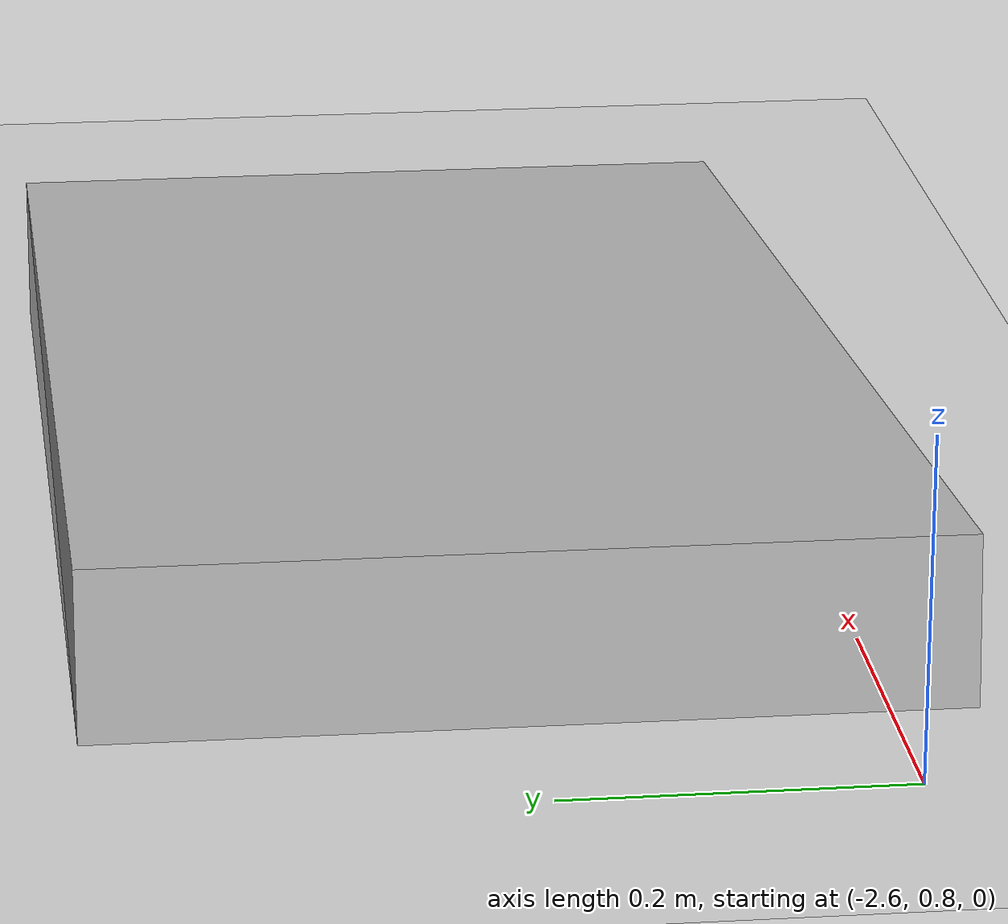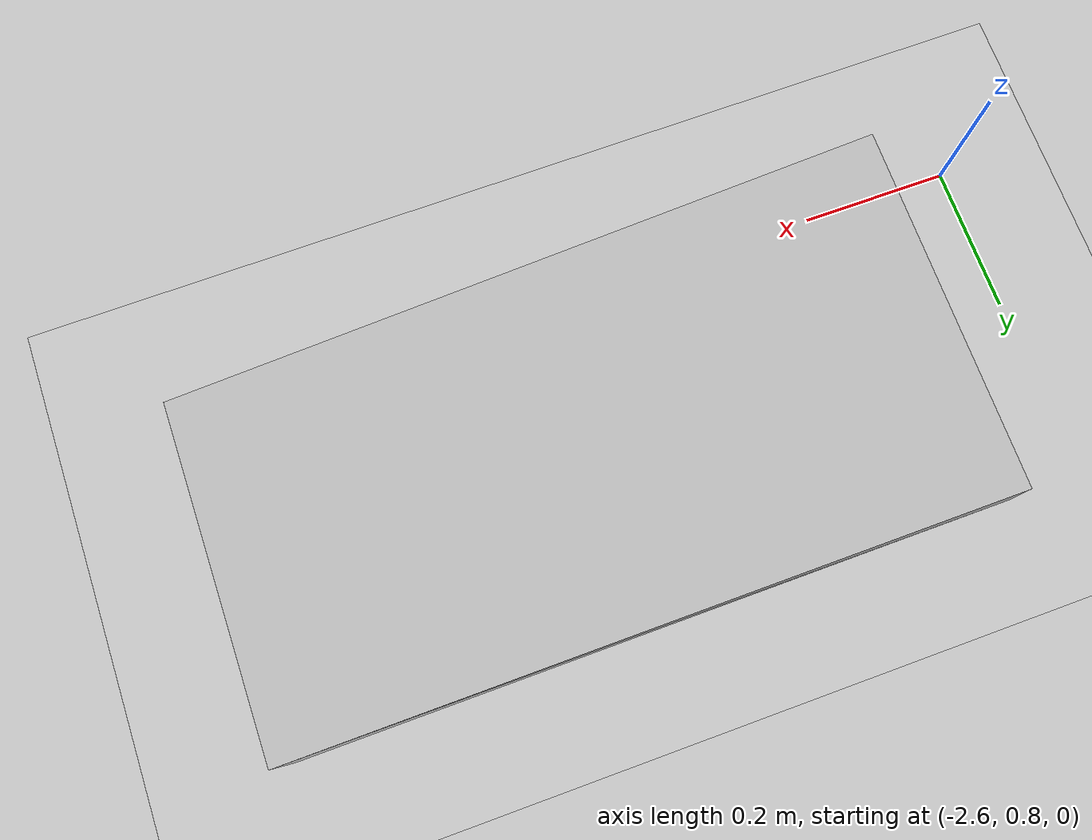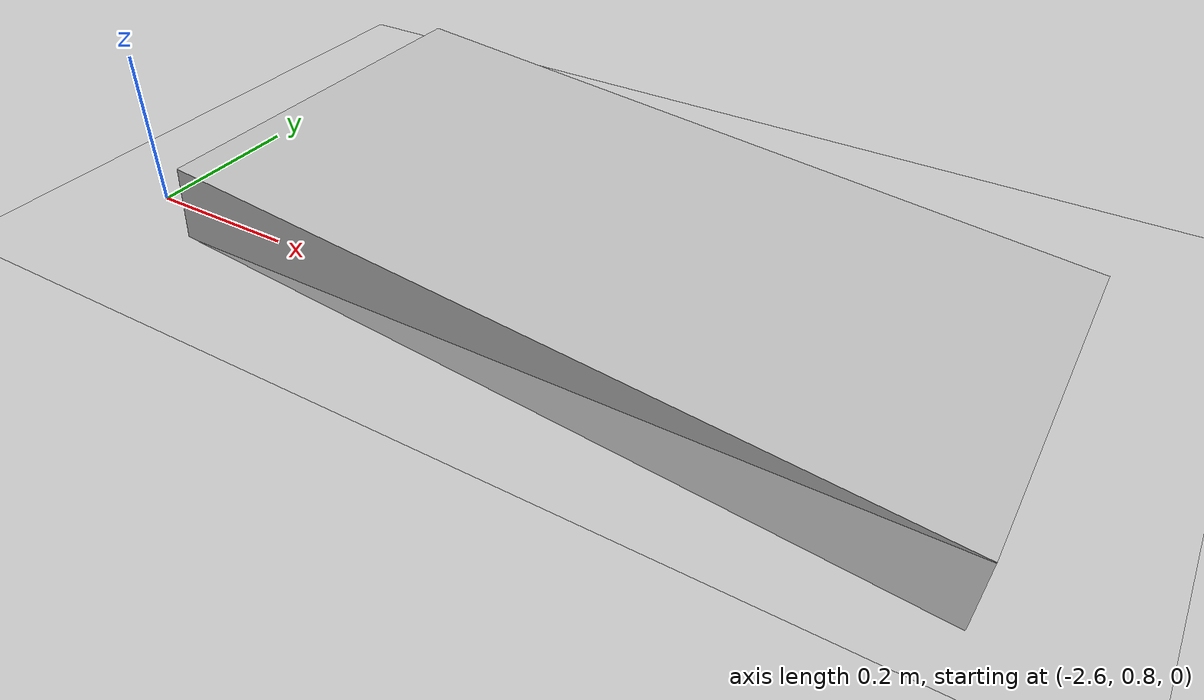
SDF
<?xml version="1.0" ?>
<sdf version="1.5">
  <world name="default">
    <include>
      <uri>model://ground_plane</uri>
    </include>
    <include>
      <uri>model://sun</uri>
    </include>

    <model name="box">
      <static>true</static>
      <pose>-2 1 0 0 0.1 0</pose>
      <link name="link">
        <collision name="collision">
          <geometry>
            <box>
              <size>1 0.5 .1</size>
            </box>
          </geometry>
        </collision>
        <visual name="visual">
          <geometry>
            <box>
              <size>1 0.5 .1</size>
            </box>
          </geometry>
        </visual>
      </link>
    </model>
  </world>
</sdf>
